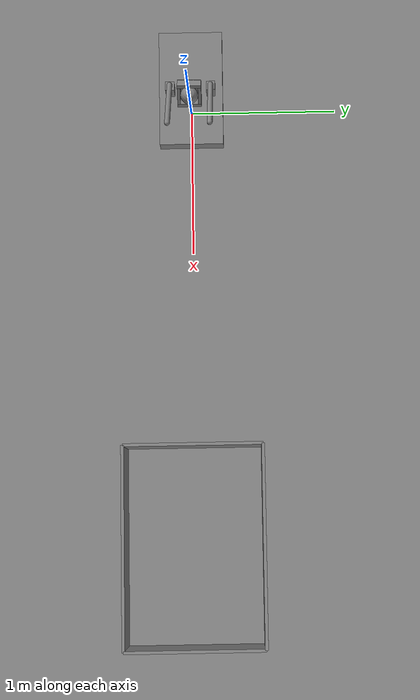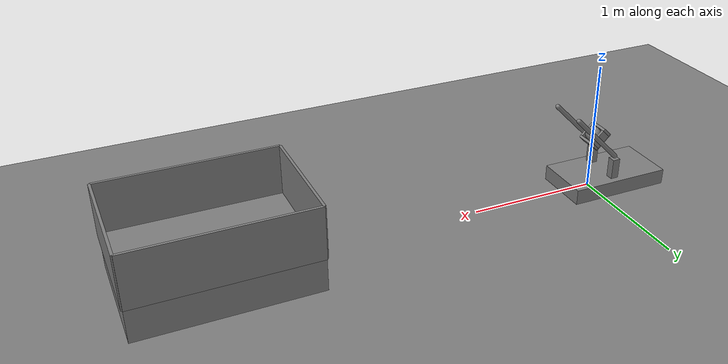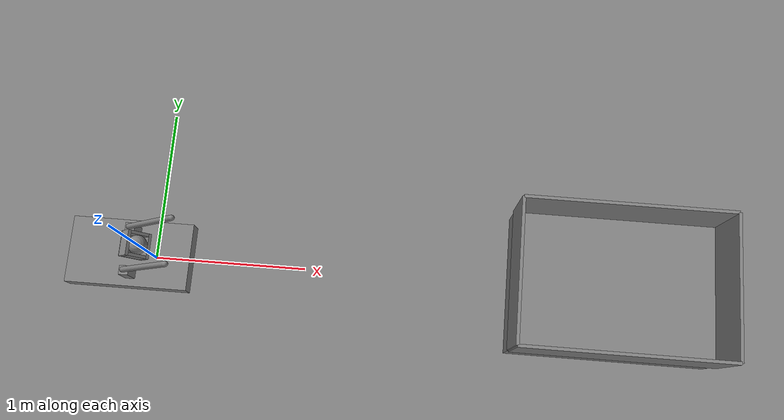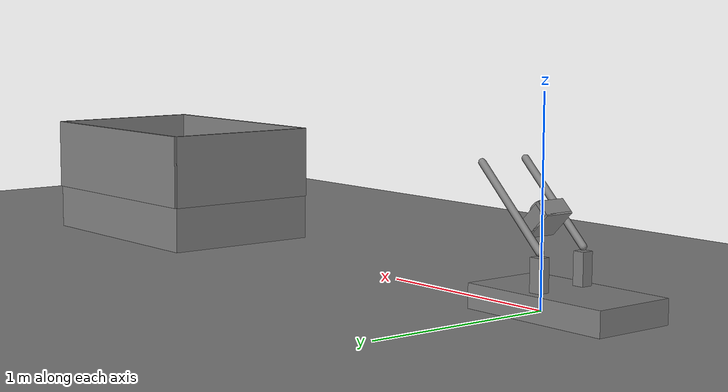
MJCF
<mujoco model="spring_catapult">
  <option timestep="0.002"/>
  <worldbody>
    <geom name="floor" type="plane" size="8 8 0.1"/>
    <geom name="catapult_base" type="box" pos="-0.15 0 0.06" size="0.4 0.22 0.06"/>
    <geom name="catapult_support_left" type="box" pos="-0.12 0.14 0.20" size="0.03 0.03 0.08"/>
    <geom name="catapult_support_right" type="box" pos="-0.12 -0.14 0.20" size="0.03 0.03 0.08"/>
    <geom name="catapult_rail_left" type="capsule" fromto="-0.12 0.14 0.30 0.25 0.14 0.67" size="0.018"/>
    <geom name="catapult_rail_right" type="capsule" fromto="-0.12 -0.14 0.30 0.25 -0.14 0.67" size="0.018"/>
    <body name="catapult_carriage" pos="-0.04596194 0 0.40403806" quat="0.923879533 0 0.382683432 0">
      <joint name="catapult_slide" type="slide" axis="0 0 1" limited="true" range="0 0.3" stiffness="20" springref="0.75" damping="0" solreflimit="0.004 1" solimplimit="0.99 0.99 0.001"/>
      <geom name="catapult_cup_floor" type="box" pos="0 0 0" size="0.08 0.08 0.005" mass="0.06" friction="0 0 0" condim="1" priority="1" solref="0.004 1"/>
      <geom name="catapult_cup_side_positive" type="box" pos="0.07 0 0.04" size="0.01 0.08 0.04" mass="0.01" friction="0 0 0" condim="1" priority="1" solref="0.004 1"/>
      <geom name="catapult_cup_side_negative" type="box" pos="-0.07 0 0.04" size="0.01 0.08 0.04" mass="0.01" friction="0 0 0" condim="1" priority="1" solref="0.004 1"/>
      <geom name="catapult_cup_left" type="box" pos="0 0.07 0.04" size="0.06 0.01 0.04" mass="0.01" friction="0 0 0" condim="1" priority="1" solref="0.004 1"/>
      <geom name="catapult_cup_right" type="box" pos="0 -0.07 0.04" size="0.06 0.01 0.04" mass="0.01" friction="0 0 0" condim="1" priority="1" solref="0.004 1"/>
    </body>
    <body name="ball" pos="0 0 0.45">
      <freejoint/>
      <geom name="ball" type="sphere" size="0.06" mass="0.15" condim="6" friction="0.8 0.01 0.004" solref="0.004 1"/>
    </body>
    <body name="bucket" pos="3 0 0.45">
      <geom name="bucket_support" type="box" pos="0 0 -0.325" size="0.65 0.45 0.125"/>
      <geom name="bucket_base" type="box" pos="0 0 -0.19" size="0.65 0.45 0.01"/>
      <geom name="bucket_near" type="box" pos="-0.65 0 0" size="0.01 0.45 0.2"/>
      <geom name="bucket_far" type="box" pos="0.65 0 0" size="0.01 0.45 0.2"/>
      <geom name="bucket_left" type="box" pos="0 0.45 0" size="0.65 0.01 0.2"/>
      <geom name="bucket_right" type="box" pos="0 -0.45 0" size="0.65 0.01 0.2"/>
    </body>
  </worldbody>
</mujoco>
